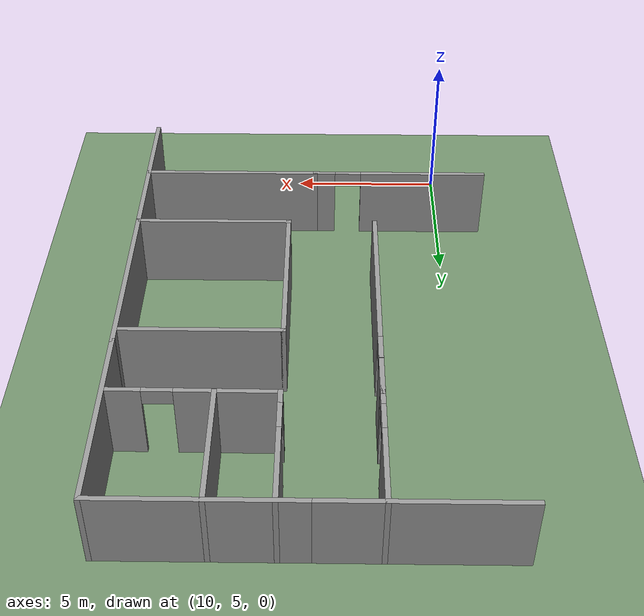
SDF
<sdf version="1.7">
 <world name="default">
  <model name="ground_plane">
   <static>1</static>
   <link name="link">
    <collision name="collision">
     <geometry><plane><normal>0 0 1</normal><size>600 600</size></plane></geometry>
     <surface>
      <contact><collide_bitmask>65535</collide_bitmask></contact>
      <friction><ode><mu>100</mu><mu2>50</mu2></ode></friction>
     </surface>
    </collision>
    <visual name="visual">
     <cast_shadows>0</cast_shadows>
     <geometry><plane><normal>0 0 1</normal><size>100 100</size></plane></geometry>
     <material><ambient>0.45 0.57 0.43 1</ambient><diffuse>0.45 0.57 0.43 1</diffuse></material>
    </visual>
   </link>
  </model>
  <model name="myhal_V3_2">
   <link name="Wall_319">
    <pose>20.475 17.4 0 0 0 -1.5708</pose>
    <visual name="Wall_319_Visual">
     <pose>0 0 1.25 0 -0 0</pose>
     <geometry><box><size>6 0.15 2.5</size></box></geometry>
     <material>
      <script><uri>file://media/materials/scripts/gazebo.material</uri><name>Gazebo/Grey</name></script>
      <ambient>1 1 1 1</ambient>
      <shader type="pixel"/>
     </material>
     <meta><layer>0</layer></meta>
    </visual>
    <collision name="Wall_319_Collision">
     <pose>0 0 1.25 0 -0 0</pose>
     <geometry><box><size>6 0.15 2.5</size></box></geometry>
     <surface>
      <friction>
       <ode><mu>1</mu><mu2>1</mu2><fdir1>0 0 0</fdir1><slip1>0</slip1><slip2>0</slip2></ode>
       <torsional>
        <coefficient>1</coefficient>
        <patch_radius>0</patch_radius>
        <surface_radius>0</surface_radius>
        <use_patch_radius>1</use_patch_radius>
        <ode><slip>0</slip></ode>
       </torsional>
      </friction>
      <bounce><restitution_coefficient>0</restitution_coefficient><threshold>1e+06</threshold></bounce>
      <contact>
       <collide_without_contact>0</collide_without_contact>
       <collide_without_contact_bitmask>1</collide_without_contact_bitmask>
       <collide_bitmask>1</collide_bitmask>
       <ode>
        <soft_cfm>0</soft_cfm>
        <soft_erp>0.2</soft_erp>
        <kp>1e+13</kp>
        <kd>1</kd>
        <max_vel>0.01</max_vel>
        <min_depth>0</min_depth>
       </ode>
       <bullet>
        <split_impulse>1</split_impulse>
        <split_impulse_penetration_threshold>-0.01</split_impulse_penetration_threshold>
        <soft_cfm>0</soft_cfm>
        <soft_erp>0.2</soft_erp>
        <kp>1e+13</kp>
        <kd>1</kd>
       </bullet>
      </contact>
     </surface>
    </collision>
   </link>
   <link name="Wall_321">
    <pose>20.475 11.55 0 0 0 -1.5708</pose>
    <visual name="Wall_321_Visual">
     <pose>0 0 1.25 0 -0 0</pose>
     <geometry><box><size>6 0.15 2.5</size></box></geometry>
     <material>
      <script><uri>file://media/materials/scripts/gazebo.material</uri><name>Gazebo/Grey</name></script>
      <ambient>1 1 1 1</ambient>
      <shader type="pixel"/>
     </material>
     <meta><layer>0</layer></meta>
    </visual>
    <collision name="Wall_321_Collision">
     <pose>0 0 1.25 0 -0 0</pose>
     <geometry><box><size>6 0.15 2.5</size></box></geometry>
     <surface>
      <friction>
       <ode><mu>1</mu><mu2>1</mu2><fdir1>0 0 0</fdir1><slip1>0</slip1><slip2>0</slip2></ode>
       <torsional>
        <coefficient>1</coefficient>
        <patch_radius>0</patch_radius>
        <surface_radius>0</surface_radius>
        <use_patch_radius>1</use_patch_radius>
        <ode><slip>0</slip></ode>
       </torsional>
      </friction>
      <bounce><restitution_coefficient>0</restitution_coefficient><threshold>1e+06</threshold></bounce>
      <contact>
       <collide_without_contact>0</collide_without_contact>
       <collide_without_contact_bitmask>1</collide_without_contact_bitmask>
       <collide_bitmask>1</collide_bitmask>
       <ode>
        <soft_cfm>0</soft_cfm>
        <soft_erp>0.2</soft_erp>
        <kp>1e+13</kp>
        <kd>1</kd>
        <max_vel>0.01</max_vel>
        <min_depth>0</min_depth>
       </ode>
       <bullet>
        <split_impulse>1</split_impulse>
        <split_impulse_penetration_threshold>-0.01</split_impulse_penetration_threshold>
        <soft_cfm>0</soft_cfm>
        <soft_erp>0.2</soft_erp>
        <kp>1e+13</kp>
        <kd>1</kd>
       </bullet>
      </contact>
     </surface>
    </collision>
   </link>
   <link name="Wall_323">
    <pose>20.475 7.2 0 0 0 -1.5708</pose>
    <visual name="Wall_323_Visual">
     <pose>0 0 1.25 0 -0 0</pose>
     <geometry><box><size>3 0.15 2.5</size></box></geometry>
     <material>
      <script><uri>file://media/materials/scripts/gazebo.material</uri><name>Gazebo/Grey</name></script>
      <ambient>1 1 1 1</ambient>
      <shader type="pixel"/>
     </material>
     <meta><layer>0</layer></meta>
    </visual>
    <collision name="Wall_323_Collision">
     <pose>0 0 1.25 0 -0 0</pose>
     <geometry><box><size>3 0.15 2.5</size></box></geometry>
     <surface>
      <friction>
       <ode><mu>1</mu><mu2>1</mu2><fdir1>0 0 0</fdir1><slip1>0</slip1><slip2>0</slip2></ode>
       <torsional>
        <coefficient>1</coefficient>
        <patch_radius>0</patch_radius>
        <surface_radius>0</surface_radius>
        <use_patch_radius>1</use_patch_radius>
        <ode><slip>0</slip></ode>
       </torsional>
      </friction>
      <bounce><restitution_coefficient>0</restitution_coefficient><threshold>1e+06</threshold></bounce>
      <contact>
       <collide_without_contact>0</collide_without_contact>
       <collide_without_contact_bitmask>1</collide_without_contact_bitmask>
       <collide_bitmask>1</collide_bitmask>
       <ode>
        <soft_cfm>0</soft_cfm>
        <soft_erp>0.2</soft_erp>
        <kp>1e+13</kp>
        <kd>1</kd>
        <max_vel>0.01</max_vel>
        <min_depth>0</min_depth>
       </ode>
       <bullet>
        <split_impulse>1</split_impulse>
        <split_impulse_penetration_threshold>-0.01</split_impulse_penetration_threshold>
        <soft_cfm>0</soft_cfm>
        <soft_erp>0.2</soft_erp>
        <kp>1e+13</kp>
        <kd>1</kd>
       </bullet>
      </contact>
     </surface>
    </collision>
   </link>
   <link name="Wall_324">
    <pose>20.475 4.35 0 0 0 -1.5708</pose>
    <visual name="Wall_324_Visual">
     <pose>0 0 1.25 0 -0 0</pose>
     <geometry><box><size>3 0.15 2.5</size></box></geometry>
     <material>
      <script><uri>file://media/materials/scripts/gazebo.material</uri><name>Gazebo/Grey</name></script>
      <ambient>1 1 1 1</ambient>
      <shader type="pixel"/>
     </material>
     <meta><layer>0</layer></meta>
    </visual>
    <collision name="Wall_324_Collision">
     <pose>0 0 1.25 0 -0 0</pose>
     <geometry><box><size>3 0.15 2.5</size></box></geometry>
     <surface>
      <friction>
       <ode><mu>1</mu><mu2>1</mu2><fdir1>0 0 0</fdir1><slip1>0</slip1><slip2>0</slip2></ode>
       <torsional>
        <coefficient>1</coefficient>
        <patch_radius>0</patch_radius>
        <surface_radius>0</surface_radius>
        <use_patch_radius>1</use_patch_radius>
        <ode><slip>0</slip></ode>
       </torsional>
      </friction>
      <bounce><restitution_coefficient>0</restitution_coefficient><threshold>1e+06</threshold></bounce>
      <contact>
       <collide_without_contact>0</collide_without_contact>
       <collide_without_contact_bitmask>1</collide_without_contact_bitmask>
       <collide_bitmask>1</collide_bitmask>
       <ode>
        <soft_cfm>0</soft_cfm>
        <soft_erp>0.2</soft_erp>
        <kp>1e+13</kp>
        <kd>1</kd>
        <max_vel>0.01</max_vel>
        <min_depth>0</min_depth>
       </ode>
       <bullet>
        <split_impulse>1</split_impulse>
        <split_impulse_penetration_threshold>-0.01</split_impulse_penetration_threshold>
        <soft_cfm>0</soft_cfm>
        <soft_erp>0.2</soft_erp>
        <kp>1e+13</kp>
        <kd>1</kd>
       </bullet>
      </contact>
     </surface>
    </collision>
   </link>
   <link name="Wall_333">
    <pose>17.55 20.325 0 0 -0 3.14159</pose>
    <visual name="Wall_333_Visual">
     <pose>0 0 1.25 0 -0 0</pose>
     <geometry><box><size>6 0.15 2.5</size></box></geometry>
     <material>
      <script><uri>file://media/materials/scripts/gazebo.material</uri><name>Gazebo/Grey</name></script>
      <ambient>1 1 1 1</ambient>
      <shader type="pixel"/>
     </material>
     <meta><layer>0</layer></meta>
    </visual>
    <collision name="Wall_333_Collision">
     <pose>0 0 1.25 0 -0 0</pose>
     <geometry><box><size>6 0.15 2.5</size></box></geometry>
     <surface>
      <friction>
       <ode><mu>1</mu><mu2>1</mu2><fdir1>0 0 0</fdir1><slip1>0</slip1><slip2>0</slip2></ode>
       <torsional>
        <coefficient>1</coefficient>
        <patch_radius>0</patch_radius>
        <surface_radius>0</surface_radius>
        <use_patch_radius>1</use_patch_radius>
        <ode><slip>0</slip></ode>
       </torsional>
      </friction>
      <bounce><restitution_coefficient>0</restitution_coefficient><threshold>1e+06</threshold></bounce>
      <contact>
       <collide_without_contact>0</collide_without_contact>
       <collide_without_contact_bitmask>1</collide_without_contact_bitmask>
       <collide_bitmask>1</collide_bitmask>
       <ode>
        <soft_cfm>0</soft_cfm>
        <soft_erp>0.2</soft_erp>
        <kp>1e+13</kp>
        <kd>1</kd>
        <max_vel>0.01</max_vel>
        <min_depth>0</min_depth>
       </ode>
       <bullet>
        <split_impulse>1</split_impulse>
        <split_impulse_penetration_threshold>-0.01</split_impulse_penetration_threshold>
        <soft_cfm>0</soft_cfm>
        <soft_erp>0.2</soft_erp>
        <kp>1e+13</kp>
        <kd>1</kd>
       </bullet>
      </contact>
     </surface>
    </collision>
   </link>
   <link name="Wall_334">
    <pose>11.7 20.325 0 0 -0 3.14159</pose>
    <visual name="Wall_334_Visual">
     <pose>0 0 1.25 0 -0 0</pose>
     <geometry><box><size>6 0.15 2.5</size></box></geometry>
     <material>
      <script><uri>file://media/materials/scripts/gazebo.material</uri><name>Gazebo/Grey</name></script>
      <ambient>1 1 1 1</ambient>
      <shader type="pixel"/>
     </material>
     <meta><layer>0</layer></meta>
    </visual>
    <collision name="Wall_334_Collision">
     <pose>0 0 1.25 0 -0 0</pose>
     <geometry><box><size>6 0.15 2.5</size></box></geometry>
     <surface>
      <friction>
       <ode><mu>1</mu><mu2>1</mu2><fdir1>0 0 0</fdir1><slip1>0</slip1><slip2>0</slip2></ode>
       <torsional>
        <coefficient>1</coefficient>
        <patch_radius>0</patch_radius>
        <surface_radius>0</surface_radius>
        <use_patch_radius>1</use_patch_radius>
        <ode><slip>0</slip></ode>
       </torsional>
      </friction>
      <bounce><restitution_coefficient>0</restitution_coefficient><threshold>1e+06</threshold></bounce>
      <contact>
       <collide_without_contact>0</collide_without_contact>
       <collide_without_contact_bitmask>1</collide_without_contact_bitmask>
       <collide_bitmask>1</collide_bitmask>
       <ode>
        <soft_cfm>0</soft_cfm>
        <soft_erp>0.2</soft_erp>
        <kp>1e+13</kp>
        <kd>1</kd>
        <max_vel>0.01</max_vel>
        <min_depth>0</min_depth>
       </ode>
       <bullet>
        <split_impulse>1</split_impulse>
        <split_impulse_penetration_threshold>-0.01</split_impulse_penetration_threshold>
        <soft_cfm>0</soft_cfm>
        <soft_erp>0.2</soft_erp>
        <kp>1e+13</kp>
        <kd>1</kd>
       </bullet>
      </contact>
     </surface>
    </collision>
   </link>
   <link name="Wall_377">
    <pose>12.625 12.55 0 0 -0 1.5708</pose>
    <visual name="Wall_377_Visual_0">
     <pose>-1.16536 0 1.25 0 -0 0</pose>
     <geometry><box><size>5.66928 0.15 2.5</size></box></geometry>
     <material>
      <script><uri>file://media/materials/scripts/gazebo.material</uri><name>Gazebo/Grey</name></script>
      <ambient>1 1 1 1</ambient>
      <shader type="pixel"/>
     </material>
     <meta><layer>0</layer></meta>
    </visual>
    <visual name="Wall_377_Visual_1">
     <pose>3.28464 0 1.25 0 -0 0</pose>
     <geometry><box><size>1.43072 0.15 2.5</size></box></geometry>
     <material>
      <script><uri>file://media/materials/scripts/gazebo.material</uri><name>Gazebo/Grey</name></script>
      <ambient>1 1 1 1</ambient>
      <shader type="pixel"/>
     </material>
     <meta><layer>0</layer></meta>
    </visual>
    <visual name="Wall_377_Visual_2">
     <pose>3.72381 0 1.25 0 -0 0</pose>
     <geometry><box><size>0.552386 0.15 2.5</size></box></geometry>
     <material>
      <script><uri>file://media/materials/scripts/gazebo.material</uri><name>Gazebo/Grey</name></script>
      <ambient>1 1 1 1</ambient>
      <shader type="pixel"/>
     </material>
     <meta><layer>0</layer></meta>
    </visual>
    <visual name="Wall_377_Visual_3">
     <pose>2.10845 0 2.25 0 -0 0</pose>
     <geometry><box><size>0.878338 0.15 0.5</size></box></geometry>
     <material>
      <script><uri>file://media/materials/scripts/gazebo.material</uri><name>Gazebo/Grey</name></script>
      <ambient>1 1 1 1</ambient>
      <shader type="pixel"/>
     </material>
     <meta><layer>0</layer></meta>
    </visual>
    <collision name="Wall_377_Collision_0">
     <pose>-1.16536 0 1.25 0 -0 0</pose>
     <geometry><box><size>5.66928 0.15 2.5</size></box></geometry>
     <surface>
      <friction>
       <ode><mu>1</mu><mu2>1</mu2><fdir1>0 0 0</fdir1><slip1>0</slip1><slip2>0</slip2></ode>
       <torsional>
        <coefficient>1</coefficient>
        <patch_radius>0</patch_radius>
        <surface_radius>0</surface_radius>
        <use_patch_radius>1</use_patch_radius>
        <ode><slip>0</slip></ode>
       </torsional>
      </friction>
      <bounce><restitution_coefficient>0</restitution_coefficient><threshold>1e+06</threshold></bounce>
      <contact>
       <collide_without_contact>0</collide_without_contact>
       <collide_without_contact_bitmask>1</collide_without_contact_bitmask>
       <collide_bitmask>1</collide_bitmask>
       <ode>
        <soft_cfm>0</soft_cfm>
        <soft_erp>0.2</soft_erp>
        <kp>1e+13</kp>
        <kd>1</kd>
        <max_vel>0.01</max_vel>
        <min_depth>0</min_depth>
       </ode>
       <bullet>
        <split_impulse>1</split_impulse>
        <split_impulse_penetration_threshold>-0.01</split_impulse_penetration_threshold>
        <soft_cfm>0</soft_cfm>
        <soft_erp>0.2</soft_erp>
        <kp>1e+13</kp>
        <kd>1</kd>
       </bullet>
      </contact>
     </surface>
    </collision>
    <collision name="Wall_377_Collision_1">
     <pose>3.28464 0 1.25 0 -0 0</pose>
     <geometry><box><size>1.43072 0.15 2.5</size></box></geometry>
     <surface>
      <friction>
       <ode><mu>1</mu><mu2>1</mu2><fdir1>0 0 0</fdir1><slip1>0</slip1><slip2>0</slip2></ode>
       <torsional>
        <coefficient>1</coefficient>
        <patch_radius>0</patch_radius>
        <surface_radius>0</surface_radius>
        <use_patch_radius>1</use_patch_radius>
        <ode><slip>0</slip></ode>
       </torsional>
      </friction>
      <bounce><restitution_coefficient>0</restitution_coefficient><threshold>1e+06</threshold></bounce>
      <contact>
       <collide_without_contact>0</collide_without_contact>
       <collide_without_contact_bitmask>1</collide_without_contact_bitmask>
       <collide_bitmask>1</collide_bitmask>
       <ode>
        <soft_cfm>0</soft_cfm>
        <soft_erp>0.2</soft_erp>
        <kp>1e+13</kp>
        <kd>1</kd>
        <max_vel>0.01</max_vel>
        <min_depth>0</min_depth>
       </ode>
       <bullet>
        <split_impulse>1</split_impulse>
        <split_impulse_penetration_threshold>-0.01</split_impulse_penetration_threshold>
        <soft_cfm>0</soft_cfm>
        <soft_erp>0.2</soft_erp>
        <kp>1e+13</kp>
        <kd>1</kd>
       </bullet>
      </contact>
     </surface>
    </collision>
    <collision name="Wall_377_Collision_2">
     <pose>3.72381 0 1.25 0 -0 0</pose>
     <geometry><box><size>0.552386 0.15 2.5</size></box></geometry>
     <surface>
      <friction>
       <ode><mu>1</mu><mu2>1</mu2><fdir1>0 0 0</fdir1><slip1>0</slip1><slip2>0</slip2></ode>
       <torsional>
        <coefficient>1</coefficient>
        <patch_radius>0</patch_radius>
        <surface_radius>0</surface_radius>
        <use_patch_radius>1</use_patch_radius>
        <ode><slip>0</slip></ode>
       </torsional>
      </friction>
      <bounce><restitution_coefficient>0</restitution_coefficient><threshold>1e+06</threshold></bounce>
      <contact>
       <collide_without_contact>0</collide_without_contact>
       <collide_without_contact_bitmask>1</collide_without_contact_bitmask>
       <collide_bitmask>1</collide_bitmask>
       <ode>
        <soft_cfm>0</soft_cfm>
        <soft_erp>0.2</soft_erp>
        <kp>1e+13</kp>
        <kd>1</kd>
        <max_vel>0.01</max_vel>
        <min_depth>0</min_depth>
       </ode>
       <bullet>
        <split_impulse>1</split_impulse>
        <split_impulse_penetration_threshold>-0.01</split_impulse_penetration_threshold>
        <soft_cfm>0</soft_cfm>
        <soft_erp>0.2</soft_erp>
        <kp>1e+13</kp>
        <kd>1</kd>
       </bullet>
      </contact>
     </surface>
    </collision>
    <collision name="Wall_377_Collision_3">
     <pose>2.10845 0 2.25 0 -0 0</pose>
     <geometry><box><size>0.878338 0.15 0.5</size></box></geometry>
     <surface>
      <friction>
       <ode><mu>1</mu><mu2>1</mu2><fdir1>0 0 0</fdir1><slip1>0</slip1><slip2>0</slip2></ode>
       <torsional>
        <coefficient>1</coefficient>
        <patch_radius>0</patch_radius>
        <surface_radius>0</surface_radius>
        <use_patch_radius>1</use_patch_radius>
        <ode><slip>0</slip></ode>
       </torsional>
      </friction>
      <bounce><restitution_coefficient>0</restitution_coefficient><threshold>1e+06</threshold></bounce>
      <contact>
       <collide_without_contact>0</collide_without_contact>
       <collide_without_contact_bitmask>1</collide_without_contact_bitmask>
       <collide_bitmask>1</collide_bitmask>
       <ode>
        <soft_cfm>0</soft_cfm>
        <soft_erp>0.2</soft_erp>
        <kp>1e+13</kp>
        <kd>1</kd>
        <max_vel>0.01</max_vel>
        <min_depth>0</min_depth>
       </ode>
       <bullet>
        <split_impulse>1</split_impulse>
        <split_impulse_penetration_threshold>-0.01</split_impulse_penetration_threshold>
        <soft_cfm>0</soft_cfm>
        <soft_erp>0.2</soft_erp>
        <kp>1e+13</kp>
        <kd>1</kd>
       </bullet>
      </contact>
     </surface>
    </collision>
   </link>
   <link name="Wall_378">
    <pose>12.625 18.4 0 0 -0 1.5708</pose>
    <visual name="Wall_378_Visual_0">
     <pose>-1.73364 0 1.25 0 -0 0</pose>
     <geometry><box><size>0.532712 0.15 2.5</size></box></geometry>
     <material>
      <script><uri>file://media/materials/scripts/gazebo.material</uri><name>Gazebo/Grey</name></script>
      <ambient>1 1 1 1</ambient>
      <shader type="pixel"/>
     </material>
     <meta><layer>0</layer></meta>
    </visual>
    <visual name="Wall_378_Visual_1">
     <pose>0.716356 0 1.25 0 -0 0</pose>
     <geometry><box><size>2.56729 0.15 2.5</size></box></geometry>
     <material>
      <script><uri>file://media/materials/scripts/gazebo.material</uri><name>Gazebo/Grey</name></script>
      <ambient>1 1 1 1</ambient>
      <shader type="pixel"/>
     </material>
     <meta><layer>0</layer></meta>
    </visual>
    <visual name="Wall_378_Visual_2">
     <pose>-1.01729 0 2.25 0 -0 0</pose>
     <geometry><box><size>0.9 0.15 0.5</size></box></geometry>
     <material>
      <script><uri>file://media/materials/scripts/gazebo.material</uri><name>Gazebo/Grey</name></script>
      <ambient>1 1 1 1</ambient>
      <shader type="pixel"/>
     </material>
     <meta><layer>0</layer></meta>
    </visual>
    <collision name="Wall_378_Collision_0">
     <pose>-1.73364 0 1.25 0 -0 0</pose>
     <geometry><box><size>0.532712 0.15 2.5</size></box></geometry>
     <surface>
      <friction>
       <ode><mu>1</mu><mu2>1</mu2><fdir1>0 0 0</fdir1><slip1>0</slip1><slip2>0</slip2></ode>
       <torsional>
        <coefficient>1</coefficient>
        <patch_radius>0</patch_radius>
        <surface_radius>0</surface_radius>
        <use_patch_radius>1</use_patch_radius>
        <ode><slip>0</slip></ode>
       </torsional>
      </friction>
      <bounce><restitution_coefficient>0</restitution_coefficient><threshold>1e+06</threshold></bounce>
      <contact>
       <collide_without_contact>0</collide_without_contact>
       <collide_without_contact_bitmask>1</collide_without_contact_bitmask>
       <collide_bitmask>1</collide_bitmask>
       <ode>
        <soft_cfm>0</soft_cfm>
        <soft_erp>0.2</soft_erp>
        <kp>1e+13</kp>
        <kd>1</kd>
        <max_vel>0.01</max_vel>
        <min_depth>0</min_depth>
       </ode>
       <bullet>
        <split_impulse>1</split_impulse>
        <split_impulse_penetration_threshold>-0.01</split_impulse_penetration_threshold>
        <soft_cfm>0</soft_cfm>
        <soft_erp>0.2</soft_erp>
        <kp>1e+13</kp>
        <kd>1</kd>
       </bullet>
      </contact>
     </surface>
    </collision>
    <collision name="Wall_378_Collision_1">
     <pose>0.716356 0 1.25 0 -0 0</pose>
     <geometry><box><size>2.56729 0.15 2.5</size></box></geometry>
     <surface>
      <friction>
       <ode><mu>1</mu><mu2>1</mu2><fdir1>0 0 0</fdir1><slip1>0</slip1><slip2>0</slip2></ode>
       <torsional>
        <coefficient>1</coefficient>
        <patch_radius>0</patch_radius>
        <surface_radius>0</surface_radius>
        <use_patch_radius>1</use_patch_radius>
        <ode><slip>0</slip></ode>
       </torsional>
      </friction>
      <bounce><restitution_coefficient>0</restitution_coefficient><threshold>1e+06</threshold></bounce>
      <contact>
       <collide_without_contact>0</collide_without_contact>
       <collide_without_contact_bitmask>1</collide_without_contact_bitmask>
       <collide_bitmask>1</collide_bitmask>
       <ode>
        <soft_cfm>0</soft_cfm>
        <soft_erp>0.2</soft_erp>
        <kp>1e+13</kp>
        <kd>1</kd>
        <max_vel>0.01</max_vel>
        <min_depth>0</min_depth>
       </ode>
       <bullet>
        <split_impulse>1</split_impulse>
        <split_impulse_penetration_threshold>-0.01</split_impulse_penetration_threshold>
        <soft_cfm>0</soft_cfm>
        <soft_erp>0.2</soft_erp>
        <kp>1e+13</kp>
        <kd>1</kd>
       </bullet>
      </contact>
     </surface>
    </collision>
    <collision name="Wall_378_Collision_2">
     <pose>-1.01729 0 2.25 0 -0 0</pose>
     <geometry><box><size>0.9 0.15 0.5</size></box></geometry>
     <surface>
      <friction>
       <ode><mu>1</mu><mu2>1</mu2><fdir1>0 0 0</fdir1><slip1>0</slip1><slip2>0</slip2></ode>
       <torsional>
        <coefficient>1</coefficient>
        <patch_radius>0</patch_radius>
        <surface_radius>0</surface_radius>
        <use_patch_radius>1</use_patch_radius>
        <ode><slip>0</slip></ode>
       </torsional>
      </friction>
      <bounce><restitution_coefficient>0</restitution_coefficient><threshold>1e+06</threshold></bounce>
      <contact>
       <collide_without_contact>0</collide_without_contact>
       <collide_without_contact_bitmask>1</collide_without_contact_bitmask>
       <collide_bitmask>1</collide_bitmask>
       <ode>
        <soft_cfm>0</soft_cfm>
        <soft_erp>0.2</soft_erp>
        <kp>1e+13</kp>
        <kd>1</kd>
        <max_vel>0.01</max_vel>
        <min_depth>0</min_depth>
       </ode>
       <bullet>
        <split_impulse>1</split_impulse>
        <split_impulse_penetration_threshold>-0.01</split_impulse_penetration_threshold>
        <soft_cfm>0</soft_cfm>
        <soft_erp>0.2</soft_erp>
        <kp>1e+13</kp>
        <kd>1</kd>
       </bullet>
      </contact>
     </surface>
    </collision>
   </link>
   <link name="Wall_389">
    <pose>17.975 8.625 0 0 -0 0</pose>
    <visual name="Wall_389_Visual">
     <pose>0 0 1.25 0 -0 0</pose>
     <geometry><box><size>5.15 0.15 2.5</size></box></geometry>
     <material>
      <script><uri>file://media/materials/scripts/gazebo.material</uri><name>Gazebo/Grey</name></script>
      <ambient>1 1 1 1</ambient>
      <shader type="pixel"/>
     </material>
     <meta><layer>0</layer></meta>
    </visual>
    <collision name="Wall_389_Collision">
     <pose>0 0 1.25 0 -0 0</pose>
     <geometry><box><size>5.15 0.15 2.5</size></box></geometry>
     <surface>
      <friction>
       <ode><mu>1</mu><mu2>1</mu2><fdir1>0 0 0</fdir1><slip1>0</slip1><slip2>0</slip2></ode>
       <torsional>
        <coefficient>1</coefficient>
        <patch_radius>0</patch_radius>
        <surface_radius>0</surface_radius>
        <use_patch_radius>1</use_patch_radius>
        <ode><slip>0</slip></ode>
       </torsional>
      </friction>
      <bounce><restitution_coefficient>0</restitution_coefficient><threshold>1e+06</threshold></bounce>
      <contact>
       <collide_without_contact>0</collide_without_contact>
       <collide_without_contact_bitmask>1</collide_without_contact_bitmask>
       <collide_bitmask>1</collide_bitmask>
       <ode>
        <soft_cfm>0</soft_cfm>
        <soft_erp>0.2</soft_erp>
        <kp>1e+13</kp>
        <kd>1</kd>
        <max_vel>0.01</max_vel>
        <min_depth>0</min_depth>
       </ode>
       <bullet>
        <split_impulse>1</split_impulse>
        <split_impulse_penetration_threshold>-0.01</split_impulse_penetration_threshold>
        <soft_cfm>0</soft_cfm>
        <soft_erp>0.2</soft_erp>
        <kp>1e+13</kp>
        <kd>1</kd>
       </bullet>
      </contact>
     </surface>
    </collision>
   </link>
   <link name="Wall_392">
    <pose>17.9 16.4907 0 0 0 -0.006468</pose>
    <visual name="Wall_392_Visual_0">
     <pose>-0.960517 0 1.25 0 -0 0</pose>
     <geometry><box><size>3.07897 0.15 2.5</size></box></geometry>
     <material>
      <script><uri>file://media/materials/scripts/gazebo.material</uri><name>Gazebo/Grey</name></script>
      <ambient>1 1 1 1</ambient>
      <shader type="pixel"/>
     </material>
     <meta><layer>0</layer></meta>
    </visual>
    <visual name="Wall_392_Visual_1">
     <pose>1.98948 0 1.25 0 -0 0</pose>
     <geometry><box><size>1.02103 0.15 2.5</size></box></geometry>
     <material>
      <script><uri>file://media/materials/scripts/gazebo.material</uri><name>Gazebo/Grey</name></script>
      <ambient>1 1 1 1</ambient>
      <shader type="pixel"/>
     </material>
     <meta><layer>0</layer></meta>
    </visual>
    <visual name="Wall_392_Visual_2">
     <pose>1.02897 0 2.25 0 -0 0</pose>
     <geometry><box><size>0.9 0.15 0.5</size></box></geometry>
     <material>
      <script><uri>file://media/materials/scripts/gazebo.material</uri><name>Gazebo/Grey</name></script>
      <ambient>1 1 1 1</ambient>
      <shader type="pixel"/>
     </material>
     <meta><layer>0</layer></meta>
    </visual>
    <collision name="Wall_392_Collision_0">
     <pose>-0.960517 0 1.25 0 -0 0</pose>
     <geometry><box><size>3.07897 0.15 2.5</size></box></geometry>
     <surface>
      <friction>
       <ode><mu>1</mu><mu2>1</mu2><fdir1>0 0 0</fdir1><slip1>0</slip1><slip2>0</slip2></ode>
       <torsional>
        <coefficient>1</coefficient>
        <patch_radius>0</patch_radius>
        <surface_radius>0</surface_radius>
        <use_patch_radius>1</use_patch_radius>
        <ode><slip>0</slip></ode>
       </torsional>
      </friction>
      <bounce><restitution_coefficient>0</restitution_coefficient><threshold>1e+06</threshold></bounce>
      <contact>
       <collide_without_contact>0</collide_without_contact>
       <collide_without_contact_bitmask>1</collide_without_contact_bitmask>
       <collide_bitmask>1</collide_bitmask>
       <ode>
        <soft_cfm>0</soft_cfm>
        <soft_erp>0.2</soft_erp>
        <kp>1e+13</kp>
        <kd>1</kd>
        <max_vel>0.01</max_vel>
        <min_depth>0</min_depth>
       </ode>
       <bullet>
        <split_impulse>1</split_impulse>
        <split_impulse_penetration_threshold>-0.01</split_impulse_penetration_threshold>
        <soft_cfm>0</soft_cfm>
        <soft_erp>0.2</soft_erp>
        <kp>1e+13</kp>
        <kd>1</kd>
       </bullet>
      </contact>
     </surface>
    </collision>
    <collision name="Wall_392_Collision_1">
     <pose>1.98948 0 1.25 0 -0 0</pose>
     <geometry><box><size>1.02103 0.15 2.5</size></box></geometry>
     <surface>
      <friction>
       <ode><mu>1</mu><mu2>1</mu2><fdir1>0 0 0</fdir1><slip1>0</slip1><slip2>0</slip2></ode>
       <torsional>
        <coefficient>1</coefficient>
        <patch_radius>0</patch_radius>
        <surface_radius>0</surface_radius>
        <use_patch_radius>1</use_patch_radius>
        <ode><slip>0</slip></ode>
       </torsional>
      </friction>
      <bounce><restitution_coefficient>0</restitution_coefficient><threshold>1e+06</threshold></bounce>
      <contact>
       <collide_without_contact>0</collide_without_contact>
       <collide_without_contact_bitmask>1</collide_without_contact_bitmask>
       <collide_bitmask>1</collide_bitmask>
       <ode>
        <soft_cfm>0</soft_cfm>
        <soft_erp>0.2</soft_erp>
        <kp>1e+13</kp>
        <kd>1</kd>
        <max_vel>0.01</max_vel>
        <min_depth>0</min_depth>
       </ode>
       <bullet>
        <split_impulse>1</split_impulse>
        <split_impulse_penetration_threshold>-0.01</split_impulse_penetration_threshold>
        <soft_cfm>0</soft_cfm>
        <soft_erp>0.2</soft_erp>
        <kp>1e+13</kp>
        <kd>1</kd>
       </bullet>
      </contact>
     </surface>
    </collision>
    <collision name="Wall_392_Collision_2">
     <pose>1.02897 0 2.25 0 -0 0</pose>
     <geometry><box><size>0.9 0.15 0.5</size></box></geometry>
     <surface>
      <friction>
       <ode><mu>1</mu><mu2>1</mu2><fdir1>0 0 0</fdir1><slip1>0</slip1><slip2>0</slip2></ode>
       <torsional>
        <coefficient>1</coefficient>
        <patch_radius>0</patch_radius>
        <surface_radius>0</surface_radius>
        <use_patch_radius>1</use_patch_radius>
        <ode><slip>0</slip></ode>
       </torsional>
      </friction>
      <bounce><restitution_coefficient>0</restitution_coefficient><threshold>1e+06</threshold></bounce>
      <contact>
       <collide_without_contact>0</collide_without_contact>
       <collide_without_contact_bitmask>1</collide_without_contact_bitmask>
       <collide_bitmask>1</collide_bitmask>
       <ode>
        <soft_cfm>0</soft_cfm>
        <soft_erp>0.2</soft_erp>
        <kp>1e+13</kp>
        <kd>1</kd>
        <max_vel>0.01</max_vel>
        <min_depth>0</min_depth>
       </ode>
       <bullet>
        <split_impulse>1</split_impulse>
        <split_impulse_penetration_threshold>-0.01</split_impulse_penetration_threshold>
        <soft_cfm>0</soft_cfm>
        <soft_erp>0.2</soft_erp>
        <kp>1e+13</kp>
        <kd>1</kd>
       </bullet>
      </contact>
     </surface>
    </collision>
   </link>
   <link name="Wall_394">
    <pose>15.475 18.4157 0 0 -0 1.5708</pose>
    <visual name="Wall_394_Visual_0">
     <pose>-1.73721 0 1.25 0 -0 0</pose>
     <geometry><box><size>0.494202 0.15 2.5</size></box></geometry>
     <material>
      <script><uri>file://media/materials/scripts/gazebo.material</uri><name>Gazebo/Grey</name></script>
      <ambient>1 1 1 1</ambient>
      <shader type="pixel"/>
     </material>
     <meta><layer>0</layer></meta>
    </visual>
    <visual name="Wall_394_Visual_1">
     <pose>0.697101 0 1.25 0 -0 0</pose>
     <geometry><box><size>2.57443 0.15 2.5</size></box></geometry>
     <material>
      <script><uri>file://media/materials/scripts/gazebo.material</uri><name>Gazebo/Grey</name></script>
      <ambient>1 1 1 1</ambient>
      <shader type="pixel"/>
     </material>
     <meta><layer>0</layer></meta>
    </visual>
    <visual name="Wall_394_Visual_2">
     <pose>-1.04011 0 2.25 0 -0 0</pose>
     <geometry><box><size>0.9 0.15 0.5</size></box></geometry>
     <material>
      <script><uri>file://media/materials/scripts/gazebo.material</uri><name>Gazebo/Grey</name></script>
      <ambient>1 1 1 1</ambient>
      <shader type="pixel"/>
     </material>
     <meta><layer>0</layer></meta>
    </visual>
    <collision name="Wall_394_Collision_0">
     <pose>-1.73721 0 1.25 0 -0 0</pose>
     <geometry><box><size>0.494202 0.15 2.5</size></box></geometry>
     <surface>
      <friction>
       <ode><mu>1</mu><mu2>1</mu2><fdir1>0 0 0</fdir1><slip1>0</slip1><slip2>0</slip2></ode>
       <torsional>
        <coefficient>1</coefficient>
        <patch_radius>0</patch_radius>
        <surface_radius>0</surface_radius>
        <use_patch_radius>1</use_patch_radius>
        <ode><slip>0</slip></ode>
       </torsional>
      </friction>
      <bounce><restitution_coefficient>0</restitution_coefficient><threshold>1e+06</threshold></bounce>
      <contact>
       <collide_without_contact>0</collide_without_contact>
       <collide_without_contact_bitmask>1</collide_without_contact_bitmask>
       <collide_bitmask>1</collide_bitmask>
       <ode>
        <soft_cfm>0</soft_cfm>
        <soft_erp>0.2</soft_erp>
        <kp>1e+13</kp>
        <kd>1</kd>
        <max_vel>0.01</max_vel>
        <min_depth>0</min_depth>
       </ode>
       <bullet>
        <split_impulse>1</split_impulse>
        <split_impulse_penetration_threshold>-0.01</split_impulse_penetration_threshold>
        <soft_cfm>0</soft_cfm>
        <soft_erp>0.2</soft_erp>
        <kp>1e+13</kp>
        <kd>1</kd>
       </bullet>
      </contact>
     </surface>
    </collision>
    <collision name="Wall_394_Collision_1">
     <pose>0.697101 0 1.25 0 -0 0</pose>
     <geometry><box><size>2.57443 0.15 2.5</size></box></geometry>
     <surface>
      <friction>
       <ode><mu>1</mu><mu2>1</mu2><fdir1>0 0 0</fdir1><slip1>0</slip1><slip2>0</slip2></ode>
       <torsional>
        <coefficient>1</coefficient>
        <patch_radius>0</patch_radius>
        <surface_radius>0</surface_radius>
        <use_patch_radius>1</use_patch_radius>
        <ode><slip>0</slip></ode>
       </torsional>
      </friction>
      <bounce><restitution_coefficient>0</restitution_coefficient><threshold>1e+06</threshold></bounce>
      <contact>
       <collide_without_contact>0</collide_without_contact>
       <collide_without_contact_bitmask>1</collide_without_contact_bitmask>
       <collide_bitmask>1</collide_bitmask>
       <ode>
        <soft_cfm>0</soft_cfm>
        <soft_erp>0.2</soft_erp>
        <kp>1e+13</kp>
        <kd>1</kd>
        <max_vel>0.01</max_vel>
        <min_depth>0</min_depth>
       </ode>
       <bullet>
        <split_impulse>1</split_impulse>
        <split_impulse_penetration_threshold>-0.01</split_impulse_penetration_threshold>
        <soft_cfm>0</soft_cfm>
        <soft_erp>0.2</soft_erp>
        <kp>1e+13</kp>
        <kd>1</kd>
       </bullet>
      </contact>
     </surface>
    </collision>
    <collision name="Wall_394_Collision_2">
     <pose>-1.04011 0 2.25 0 -0 0</pose>
     <geometry><box><size>0.9 0.15 0.5</size></box></geometry>
     <surface>
      <friction>
       <ode><mu>1</mu><mu2>1</mu2><fdir1>0 0 0</fdir1><slip1>0</slip1><slip2>0</slip2></ode>
       <torsional>
        <coefficient>1</coefficient>
        <patch_radius>0</patch_radius>
        <surface_radius>0</surface_radius>
        <use_patch_radius>1</use_patch_radius>
        <ode><slip>0</slip></ode>
       </torsional>
      </friction>
      <bounce><restitution_coefficient>0</restitution_coefficient><threshold>1e+06</threshold></bounce>
      <contact>
       <collide_without_contact>0</collide_without_contact>
       <collide_without_contact_bitmask>1</collide_without_contact_bitmask>
       <collide_bitmask>1</collide_bitmask>
       <ode>
        <soft_cfm>0</soft_cfm>
        <soft_erp>0.2</soft_erp>
        <kp>1e+13</kp>
        <kd>1</kd>
        <max_vel>0.01</max_vel>
        <min_depth>0</min_depth>
       </ode>
       <bullet>
        <split_impulse>1</split_impulse>
        <split_impulse_penetration_threshold>-0.01</split_impulse_penetration_threshold>
        <soft_cfm>0</soft_cfm>
        <soft_erp>0.2</soft_erp>
        <kp>1e+13</kp>
        <kd>1</kd>
       </bullet>
      </contact>
     </surface>
    </collision>
   </link>
   <link name="Wall_396">
    <pose>15.475 11.3 0 0 -0 1.5708</pose>
    <visual name="Wall_396_Visual">
     <pose>0 0 1.25 0 -0 0</pose>
     <geometry><box><size>5.5 0.15 2.5</size></box></geometry>
     <material>
      <script><uri>file://media/materials/scripts/gazebo.material</uri><name>Gazebo/Grey</name></script>
      <ambient>1 1 1 1</ambient>
      <shader type="pixel"/>
     </material>
     <meta><layer>0</layer></meta>
    </visual>
    <collision name="Wall_396_Collision">
     <pose>0 0 1.25 0 -0 0</pose>
     <geometry><box><size>5.5 0.15 2.5</size></box></geometry>
     <surface>
      <friction>
       <ode><mu>1</mu><mu2>1</mu2><fdir1>0 0 0</fdir1><slip1>0</slip1><slip2>0</slip2></ode>
       <torsional>
        <coefficient>1</coefficient>
        <patch_radius>0</patch_radius>
        <surface_radius>0</surface_radius>
        <use_patch_radius>1</use_patch_radius>
        <ode><slip>0</slip></ode>
       </torsional>
      </friction>
      <bounce><restitution_coefficient>0</restitution_coefficient><threshold>1e+06</threshold></bounce>
      <contact>
       <collide_without_contact>0</collide_without_contact>
       <collide_without_contact_bitmask>1</collide_without_contact_bitmask>
       <collide_bitmask>1</collide_bitmask>
       <ode>
        <soft_cfm>0</soft_cfm>
        <soft_erp>0.2</soft_erp>
        <kp>1e+13</kp>
        <kd>1</kd>
        <max_vel>0.01</max_vel>
        <min_depth>0</min_depth>
       </ode>
       <bullet>
        <split_impulse>1</split_impulse>
        <split_impulse_penetration_threshold>-0.01</split_impulse_penetration_threshold>
        <soft_cfm>0</soft_cfm>
        <soft_erp>0.2</soft_erp>
        <kp>1e+13</kp>
        <kd>1</kd>
       </bullet>
      </contact>
     </surface>
    </collision>
   </link>
   <link name="Wall_397">
    <pose>17.9 13.975 0 0 -0 0</pose>
    <visual name="Wall_397_Visual">
     <pose>0 0 1.25 0 -0 0</pose>
     <geometry><box><size>5 0.15 2.5</size></box></geometry>
     <material>
      <script><uri>file://media/materials/scripts/gazebo.material</uri><name>Gazebo/Grey</name></script>
      <ambient>1 1 1 1</ambient>
      <shader type="pixel"/>
     </material>
     <meta><layer>0</layer></meta>
    </visual>
    <collision name="Wall_397_Collision">
     <pose>0 0 1.25 0 -0 0</pose>
     <geometry><box><size>5 0.15 2.5</size></box></geometry>
     <surface>
      <friction>
       <ode><mu>1</mu><mu2>1</mu2><fdir1>0 0 0</fdir1><slip1>0</slip1><slip2>0</slip2></ode>
       <torsional>
        <coefficient>1</coefficient>
        <patch_radius>0</patch_radius>
        <surface_radius>0</surface_radius>
        <use_patch_radius>1</use_patch_radius>
        <ode><slip>0</slip></ode>
       </torsional>
      </friction>
      <bounce><restitution_coefficient>0</restitution_coefficient><threshold>1e+06</threshold></bounce>
      <contact>
       <collide_without_contact>0</collide_without_contact>
       <collide_without_contact_bitmask>1</collide_without_contact_bitmask>
       <collide_bitmask>1</collide_bitmask>
       <ode>
        <soft_cfm>0</soft_cfm>
        <soft_erp>0.2</soft_erp>
        <kp>1e+13</kp>
        <kd>1</kd>
        <max_vel>0.01</max_vel>
        <min_depth>0</min_depth>
       </ode>
       <bullet>
        <split_impulse>1</split_impulse>
        <split_impulse_penetration_threshold>-0.01</split_impulse_penetration_threshold>
        <soft_cfm>0</soft_cfm>
        <soft_erp>0.2</soft_erp>
        <kp>1e+13</kp>
        <kd>1</kd>
       </bullet>
      </contact>
     </surface>
    </collision>
   </link>
   <link name="Wall_400">
    <pose>17.325 18.4157 0 0 -0 1.5708</pose>
    <visual name="Wall_400_Visual">
     <pose>0 0 1.25 0 -0 0</pose>
     <geometry><box><size>3.96863 0.15 2.5</size></box></geometry>
     <material>
      <script><uri>file://media/materials/scripts/gazebo.material</uri><name>Gazebo/Grey</name></script>
      <ambient>1 1 1 1</ambient>
      <shader type="pixel"/>
     </material>
     <meta><layer>0</layer></meta>
    </visual>
    <collision name="Wall_400_Collision">
     <pose>0 0 1.25 0 -0 0</pose>
     <geometry><box><size>3.96863 0.15 2.5</size></box></geometry>
     <surface>
      <friction>
       <ode><mu>1</mu><mu2>1</mu2><fdir1>0 0 0</fdir1><slip1>0</slip1><slip2>0</slip2></ode>
       <torsional>
        <coefficient>1</coefficient>
        <patch_radius>0</patch_radius>
        <surface_radius>0</surface_radius>
        <use_patch_radius>1</use_patch_radius>
        <ode><slip>0</slip></ode>
       </torsional>
      </friction>
      <bounce><restitution_coefficient>0</restitution_coefficient><threshold>1e+06</threshold></bounce>
      <contact>
       <collide_without_contact>0</collide_without_contact>
       <collide_without_contact_bitmask>1</collide_without_contact_bitmask>
       <collide_bitmask>1</collide_bitmask>
       <ode>
        <soft_cfm>0</soft_cfm>
        <soft_erp>0.2</soft_erp>
        <kp>1e+13</kp>
        <kd>1</kd>
        <max_vel>0.01</max_vel>
        <min_depth>0</min_depth>
       </ode>
       <bullet>
        <split_impulse>1</split_impulse>
        <split_impulse_penetration_threshold>-0.01</split_impulse_penetration_threshold>
        <soft_cfm>0</soft_cfm>
        <soft_erp>0.2</soft_erp>
        <kp>1e+13</kp>
        <kd>1</kd>
       </bullet>
      </contact>
     </surface>
    </collision>
   </link>
   <link name="Wall_464">
    <pose>20.475 7.2 0 0 0 -1.5708</pose>
    <visual name="Wall_464_Visual">
     <pose>0 0 1.25 0 -0 0</pose>
     <geometry><box><size>3 0.15 2.5</size></box></geometry>
     <material>
      <script><uri>file://media/materials/scripts/gazebo.material</uri><name>Gazebo/Grey</name></script>
      <ambient>1 1 1 1</ambient>
      <shader type="pixel"/>
     </material>
     <meta><layer>0</layer></meta>
    </visual>
    <collision name="Wall_464_Collision">
     <pose>0 0 1.25 0 -0 0</pose>
     <geometry><box><size>3 0.15 2.5</size></box></geometry>
     <surface>
      <friction>
       <ode><mu>1</mu><mu2>1</mu2><fdir1>0 0 0</fdir1><slip1>0</slip1><slip2>0</slip2></ode>
       <torsional>
        <coefficient>1</coefficient>
        <patch_radius>0</patch_radius>
        <surface_radius>0</surface_radius>
        <use_patch_radius>1</use_patch_radius>
        <ode><slip>0</slip></ode>
       </torsional>
      </friction>
      <bounce><restitution_coefficient>0</restitution_coefficient><threshold>1e+06</threshold></bounce>
      <contact>
       <collide_without_contact>0</collide_without_contact>
       <collide_without_contact_bitmask>1</collide_without_contact_bitmask>
       <collide_bitmask>1</collide_bitmask>
       <ode>
        <soft_cfm>0</soft_cfm>
        <soft_erp>0.2</soft_erp>
        <kp>1e+13</kp>
        <kd>1</kd>
        <max_vel>0.01</max_vel>
        <min_depth>0</min_depth>
       </ode>
       <bullet>
        <split_impulse>1</split_impulse>
        <split_impulse_penetration_threshold>-0.01</split_impulse_penetration_threshold>
        <soft_cfm>0</soft_cfm>
        <soft_erp>0.2</soft_erp>
        <kp>1e+13</kp>
        <kd>1</kd>
       </bullet>
      </contact>
     </surface>
    </collision>
   </link>
   <link name="Wall_465">
    <pose>17.55 5.775 0 0 -0 3.14159</pose>
    <visual name="Wall_465_Visual">
     <pose>0 0 1.25 0 -0 0</pose>
     <geometry><box><size>6 0.15 2.5</size></box></geometry>
     <material>
      <script><uri>file://media/materials/scripts/gazebo.material</uri><name>Gazebo/Grey</name></script>
      <ambient>1 1 1 1</ambient>
      <shader type="pixel"/>
     </material>
     <meta><layer>0</layer></meta>
    </visual>
    <collision name="Wall_465_Collision">
     <pose>0 0 1.25 0 -0 0</pose>
     <geometry><box><size>6 0.15 2.5</size></box></geometry>
     <surface>
      <friction>
       <ode><mu>1</mu><mu2>1</mu2><fdir1>0 0 0</fdir1><slip1>0</slip1><slip2>0</slip2></ode>
       <torsional>
        <coefficient>1</coefficient>
        <patch_radius>0</patch_radius>
        <surface_radius>0</surface_radius>
        <use_patch_radius>1</use_patch_radius>
        <ode><slip>0</slip></ode>
       </torsional>
      </friction>
      <bounce><restitution_coefficient>0</restitution_coefficient><threshold>1e+06</threshold></bounce>
      <contact>
       <collide_without_contact>0</collide_without_contact>
       <collide_without_contact_bitmask>1</collide_without_contact_bitmask>
       <collide_bitmask>1</collide_bitmask>
       <ode>
        <soft_cfm>0</soft_cfm>
        <soft_erp>0.2</soft_erp>
        <kp>1e+13</kp>
        <kd>1</kd>
        <max_vel>0.01</max_vel>
        <min_depth>0</min_depth>
       </ode>
       <bullet>
        <split_impulse>1</split_impulse>
        <split_impulse_penetration_threshold>-0.01</split_impulse_penetration_threshold>
        <soft_cfm>0</soft_cfm>
        <soft_erp>0.2</soft_erp>
        <kp>1e+13</kp>
        <kd>1</kd>
       </bullet>
      </contact>
     </surface>
    </collision>
   </link>
   <link name="Wall_466">
    <pose>11.7 5.775 0 0 -0 3.14159</pose>
    <visual name="Wall_466_Visual_0">
     <pose>-2.61565 0 1.25 0 -0 0</pose>
     <geometry><box><size>0.768694 0.15 2.5</size></box></geometry>
     <material>
      <script><uri>file://media/materials/scripts/gazebo.material</uri><name>Gazebo/Grey</name></script>
      <ambient>1 1 1 1</ambient>
      <shader type="pixel"/>
     </material>
     <meta><layer>0</layer></meta>
    </visual>
    <visual name="Wall_466_Visual_1">
     <pose>0.834347 0 1.25 0 -0 0</pose>
     <geometry><box><size>4.33131 0.15 2.5</size></box></geometry>
     <material>
      <script><uri>file://media/materials/scripts/gazebo.material</uri><name>Gazebo/Grey</name></script>
      <ambient>1 1 1 1</ambient>
      <shader type="pixel"/>
     </material>
     <meta><layer>0</layer></meta>
    </visual>
    <visual name="Wall_466_Visual_2">
     <pose>-1.78131 0 2.25 0 -0 0</pose>
     <geometry><box><size>0.9 0.15 0.5</size></box></geometry>
     <material>
      <script><uri>file://media/materials/scripts/gazebo.material</uri><name>Gazebo/Grey</name></script>
      <ambient>1 1 1 1</ambient>
      <shader type="pixel"/>
     </material>
     <meta><layer>0</layer></meta>
    </visual>
    <collision name="Wall_466_Collision_0">
     <pose>-2.61565 0 1.25 0 -0 0</pose>
     <geometry><box><size>0.768694 0.15 2.5</size></box></geometry>
     <surface>
      <friction>
       <ode><mu>1</mu><mu2>1</mu2><fdir1>0 0 0</fdir1><slip1>0</slip1><slip2>0</slip2></ode>
       <torsional>
        <coefficient>1</coefficient>
        <patch_radius>0</patch_radius>
        <surface_radius>0</surface_radius>
        <use_patch_radius>1</use_patch_radius>
        <ode><slip>0</slip></ode>
       </torsional>
      </friction>
      <bounce><restitution_coefficient>0</restitution_coefficient><threshold>1e+06</threshold></bounce>
      <contact>
       <collide_without_contact>0</collide_without_contact>
       <collide_without_contact_bitmask>1</collide_without_contact_bitmask>
       <collide_bitmask>1</collide_bitmask>
       <ode>
        <soft_cfm>0</soft_cfm>
        <soft_erp>0.2</soft_erp>
        <kp>1e+13</kp>
        <kd>1</kd>
        <max_vel>0.01</max_vel>
        <min_depth>0</min_depth>
       </ode>
       <bullet>
        <split_impulse>1</split_impulse>
        <split_impulse_penetration_threshold>-0.01</split_impulse_penetration_threshold>
        <soft_cfm>0</soft_cfm>
        <soft_erp>0.2</soft_erp>
        <kp>1e+13</kp>
        <kd>1</kd>
       </bullet>
      </contact>
     </surface>
    </collision>
    <collision name="Wall_466_Collision_1">
     <pose>0.834347 0 1.25 0 -0 0</pose>
     <geometry><box><size>4.33131 0.15 2.5</size></box></geometry>
     <surface>
      <friction>
       <ode><mu>1</mu><mu2>1</mu2><fdir1>0 0 0</fdir1><slip1>0</slip1><slip2>0</slip2></ode>
       <torsional>
        <coefficient>1</coefficient>
        <patch_radius>0</patch_radius>
        <surface_radius>0</surface_radius>
        <use_patch_radius>1</use_patch_radius>
        <ode><slip>0</slip></ode>
       </torsional>
      </friction>
      <bounce><restitution_coefficient>0</restitution_coefficient><threshold>1e+06</threshold></bounce>
      <contact>
       <collide_without_contact>0</collide_without_contact>
       <collide_without_contact_bitmask>1</collide_without_contact_bitmask>
       <collide_bitmask>1</collide_bitmask>
       <ode>
        <soft_cfm>0</soft_cfm>
        <soft_erp>0.2</soft_erp>
        <kp>1e+13</kp>
        <kd>1</kd>
        <max_vel>0.01</max_vel>
        <min_depth>0</min_depth>
       </ode>
       <bullet>
        <split_impulse>1</split_impulse>
        <split_impulse_penetration_threshold>-0.01</split_impulse_penetration_threshold>
        <soft_cfm>0</soft_cfm>
        <soft_erp>0.2</soft_erp>
        <kp>1e+13</kp>
        <kd>1</kd>
       </bullet>
      </contact>
     </surface>
    </collision>
    <collision name="Wall_466_Collision_2">
     <pose>-1.78131 0 2.25 0 -0 0</pose>
     <geometry><box><size>0.9 0.15 0.5</size></box></geometry>
     <surface>
      <friction>
       <ode><mu>1</mu><mu2>1</mu2><fdir1>0 0 0</fdir1><slip1>0</slip1><slip2>0</slip2></ode>
       <torsional>
        <coefficient>1</coefficient>
        <patch_radius>0</patch_radius>
        <surface_radius>0</surface_radius>
        <use_patch_radius>1</use_patch_radius>
        <ode><slip>0</slip></ode>
       </torsional>
      </friction>
      <bounce><restitution_coefficient>0</restitution_coefficient><threshold>1e+06</threshold></bounce>
      <contact>
       <collide_without_contact>0</collide_without_contact>
       <collide_without_contact_bitmask>1</collide_without_contact_bitmask>
       <collide_bitmask>1</collide_bitmask>
       <ode>
        <soft_cfm>0</soft_cfm>
        <soft_erp>0.2</soft_erp>
        <kp>1e+13</kp>
        <kd>1</kd>
        <max_vel>0.01</max_vel>
        <min_depth>0</min_depth>
       </ode>
       <bullet>
        <split_impulse>1</split_impulse>
        <split_impulse_penetration_threshold>-0.01</split_impulse_penetration_threshold>
        <soft_cfm>0</soft_cfm>
        <soft_erp>0.2</soft_erp>
        <kp>1e+13</kp>
        <kd>1</kd>
       </bullet>
      </contact>
     </surface>
    </collision>
   </link>
   <static>1</static>
   <pose>-0.2201 2.1339 0 0 -0 0</pose>
  </model>
 </world>
</sdf>
